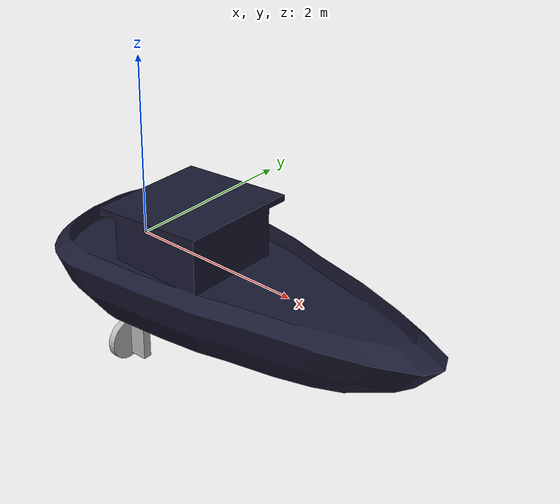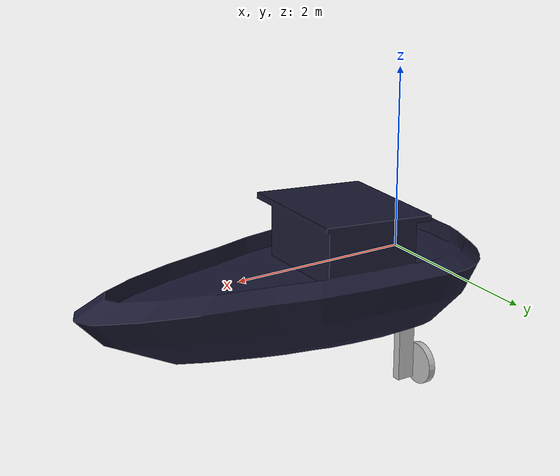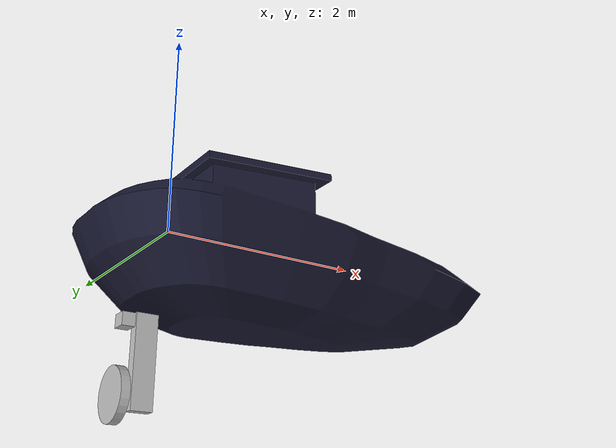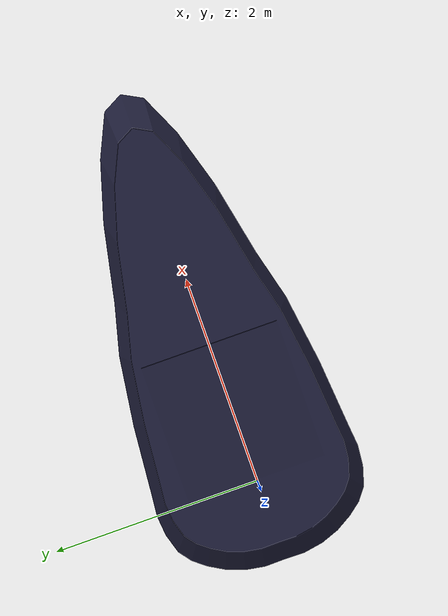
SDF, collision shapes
<?xml version="1.0" ?>
<sdf version="1.6">
    <model name='boat'>
        <enable_wind>true</enable_wind>

        <link name='boat_body'>
            <inertial>
                <pose>0.999251 0.000005 -1.223034 0 0 0</pose>
                <mass>800</mass>
                <inertia>
                    <ixx>1.325642e+2</ixx>
                    <ixy>-0.000002e+2</ixy>
                    <ixz>0.121894e+2</ixz>
                    <iyy>4.792929e+2</iyy>
                    <iyz>0.000095e+2</iyz>
                    <izz>5.052444e+2</izz>
                </inertia>

            </inertial>

            <visual name='boat_visual'>
                <geometry>
                    <mesh>
                        <uri>model://boat/meshes/boat3.dae</uri>
                    </mesh>
                </geometry>
                <material>
                    <ambient>0.1 0.1 0.1 1</ambient>
                    <diffuse>0.1 0.1 0.2 1</diffuse>
                    <specular>0 0 0 0</specular>
                    <emissive>0 0 0 1</emissive>
                </material>
            </visual>
            <collision name='boat_collision'>
                <geometry>
                    <mesh>
                        <uri>model://boat/meshes/boat3.stl</uri>
                    </mesh>
                </geometry>
            </collision>

<!--                        name="gz::sim::v7::systems::Imu">-->

        </link>

        <link name="engine_link">
            <pose>0 0 -1 0 0 0</pose>
            <visual name="visual">
                <geometry>
                    <mesh>
                        <uri>model://wam-v/meshes/engine.dae</uri>
                    </mesh>
                </geometry>
            </visual>
            <collision name="engine_vertical_axis_collision">
                <pose>-0.16 0 -0.215 0 0 0</pose>
                <geometry>
                    <box>
                        <size>0.2 0.1 0.83</size>
                    </box>
                </geometry>
            </collision>
            <collision name="engine_rear_end_collision">
                <pose>-0.34 0 0.12 0 0 0</pose>
                <geometry>
                    <box>
                        <size>0.12 0.15 0.12</size>
                    </box>
                </geometry>
            </collision>
            <inertial>
                <mass>15</mass>
                <inertia>
                    <ixx>0.88924</ixx>
                    <ixy>0</ixy>
                    <iyy>0.911125</iyy>
                    <iyz>0</iyz>
                    <izz>0.078125</izz>
                </inertia>
            </inertial>
        </link>
        <joint name="engine_joint" type="revolute">
            <parent>boat_body</parent>
            <child>engine_link</child>
            <axis>
                <xyz>0 0 1</xyz>
                <limit>
                    <lower>-1.57</lower>
                    <upper>1.57</upper>
                    <stifness>10</stifness>
                </limit>
                <dynamics>
                    <damping>30</damping>
                    <spring_stiffness>100.0</spring_stiffness>
                    <spring_reference>0</spring_reference>
                    <friction>1.0</friction>
                </dynamics>
            </axis>
        </joint>

        <link name="propeller_link">
            <pose relative_to="propeller_joint">0 0 0 0 0 0</pose>
            <visual name="visual">
                <geometry>
                    <mesh>
                        <uri>model://wam-v/meshes/propeller.dae</uri>
                    </mesh>
                </geometry>
            </visual>
            <collision name="collision">
                <pose>-0.11 0 0 0 1.570796 0</pose>
                <geometry>
                    <cylinder>
                        <length>0.08</length>
                        <radius>0.24</radius>
                    </cylinder>
                </geometry>
            </collision>
            <inertial>
                <mass>0.5</mass>
                <inertia>
                    <ixx>0.008545</ixx>
                    <ixy>0</ixy>
                    <iyy>0.008545</iyy>
                    <iyz>0</iyz>
                    <izz>0.0144</izz>
                </inertia>
            </inertial>
        </link>
        <joint name="propeller_joint" type="revolute">
            <pose relative_to="engine_link">-0.278156 0 -0.509371 0 0 0</pose>
            <parent>engine_link</parent>
            <child>propeller_link</child>
            <axis>
                <xyz>1 0 0</xyz>
                <dynamics>
                    <damping>0.01</damping>
                </dynamics>
                <limit>
                    <lower>-1e+16</lower>
                    <upper>1e+16</upper>
                </limit>
            </axis>
        </joint>

        <plugin filename="gz-sim-joint-state-publisher-system"
                name="gz::sim::systems::JointStatePublisher">
            <update_rate>30</update_rate>
            <joint_name>engine_joint</joint_name>
            <joint_name>propeller_joint</joint_name>
        </plugin>

        <plugin filename="libgz-sim-odometry-publisher-system.so"
                name="gz::sim::systems::OdometryPublisher">
        </plugin>

        <plugin
                filename="gz-sim-joint-position-controller-system"
                name="gz::sim::systems::JointPositionController">
            <joint_name>engine_joint</joint_name>
            <p_gain>1</p_gain>
            <topic>/model/boat/joint/engine_joint/cmd_steer</topic>
        </plugin>

        <!-- Thruster plugins -->
        <plugin
                filename="gz-sim-thruster-system"
                name="gz::sim::systems::Thruster">
            <namespace>boat</namespace>
            <joint_name>propeller_joint</joint_name>
            <fluid_density>1025</fluid_density>
            <propeller_diameter>0.48</propeller_diameter>
            <thrust_coefficient>0.01</thrust_coefficient>
            <p_gain>1</p_gain>

            <max_thrust_cmd>10000.0</max_thrust_cmd>
            <min_thrust_cmd>-10000.0</min_thrust_cmd>
        </plugin>

        <!-- Hydrodynamics plugin -->
        <plugin
                filename="gz-waves1-hydrodynamics-system"
                name="gz::sim::systems::Hydrodynamics">

            <enable>boat::boat_body</enable>

            <hydrodynamics>
                <damping_on>1</damping_on>
                <viscous_drag_on>1</viscous_drag_on>
                <pressure_drag_on>1</pressure_drag_on>

                <!-- Linear and Angular Damping -->
                <cDampL1>1.0E-6</cDampL1>
                <cDampL2>1.0E-6</cDampL2>
                <cDampR1>1.0E-6</cDampR1>
                <cDampR2>1.0E-6</cDampR2>

                <!-- 'Pressure' Drag -->
                <cPDrag1>1.0E+2</cPDrag1>
                <cPDrag2>1.0E+2</cPDrag2>
                <fPDrag>0.4</fPDrag>
                <cSDrag1>1.0E+2</cSDrag1>
                <cSDrag2>1.0E+2</cSDrag2>
                <fSDrag>0.4</fSDrag>
                <vRDrag>1.0</vRDrag>
            </hydrodynamics>
        </plugin>
    </model>
</sdf>
